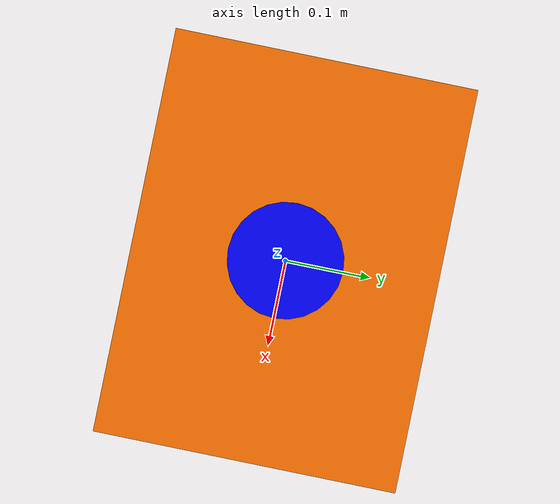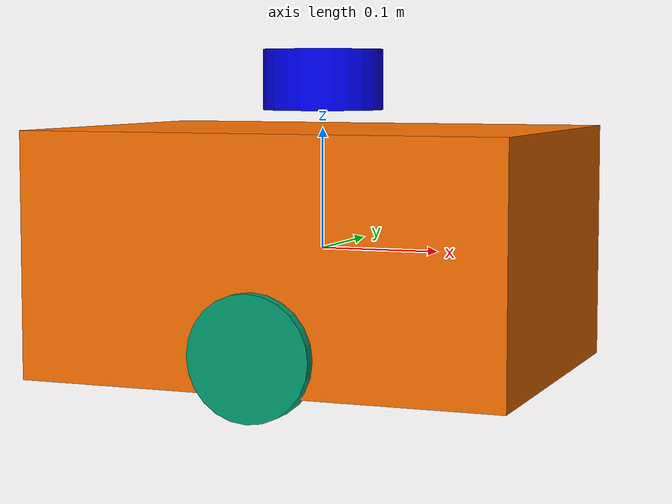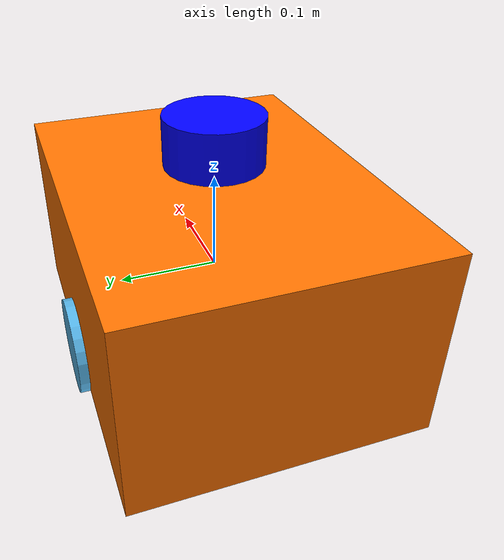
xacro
<?xml version="1.0"?>
<robot name="robot2025" xmlns:xacro="http://ros.org/wiki/xacro">

    <!-- Materials -->
    <material name="orange">
        <color rgba="1.0 0.45 0.0 1" />
    </material>
    <material name="blue">
        <color rgba="0.0 0.0 1.0 1" />
    </material>

    <!-- Base link -->
    <link name="base_link">
        <visual>
            <geometry>
                <box size="0.4 0.3 0.2" />
            </geometry>
            <material name="orange" />
        </visual>
        <collision>
            <geometry>
                <box size="0.4 0.3 0.2" />
            </geometry>
        </collision>
        <inertial>
            <mass value="5.0" />
            <inertia ixx="0.1" ixy="0.0" ixz="0.0" iyy="0.1" iyz="0.0" izz="0.1" />
        </inertial>
    </link>

    <!-- Left wheel -->
    <link name="left_wheel">
        <visual>
            <geometry>
                <cylinder radius="0.05" length="0.02" />
            </geometry>
            <origin xyz="0 0 0" rpy="1.5708 0 0" />
        </visual>
        <collision>
            <geometry>
                <cylinder radius="0.05" length="0.02" />
            </geometry>
            <origin xyz="0 0 0" rpy="1.5708 0 0" />
        </collision>
        <inertial>
            <mass value="0.2" />
            <inertia ixx="0.001" ixy="0" ixz="0" iyy="0.001" iyz="0" izz="0.001" />
        </inertial>
    </link>

    <joint name="left_wheel_joint" type="continuous">
        <parent link="base_link" />
        <child link="left_wheel" />
        <origin xyz="0 0.15 -0.07" rpy="0 0 0" />
        <axis xyz="0 1 0" />
    </joint>

    <transmission name="left_wheel_trans">
        <type>transmission_interface/SimpleTransmission</type>
        <joint name="left_wheel_joint">
            <hardwareInterface>hardware_interface/VelocityJointInterface</hardwareInterface>
        </joint>
        <actuator name="left_wheel_motor">
            <mechanicalReduction>1</mechanicalReduction>
        </actuator>
    </transmission>

    <!-- Right wheel -->
    <link name="right_wheel">
        <visual>
            <geometry>
                <cylinder radius="0.05" length="0.02" />
            </geometry>
            <origin xyz="0 0 0" rpy="1.5708 0 0" />
        </visual>
        <collision>
            <geometry>
                <cylinder radius="0.05" length="0.02" />
            </geometry>
            <origin xyz="0 0 0" rpy="1.5708 0 0" />
        </collision>
        <inertial>
            <mass value="0.2" />
            <inertia ixx="0.001" ixy="0" ixz="0" iyy="0.001" iyz="0" izz="0.001" />
        </inertial>
    </link>

    <joint name="right_wheel_joint" type="continuous">
        <parent link="base_link" />
        <child link="right_wheel" />
        <origin xyz="0 -0.15 -0.07" rpy="0 0 0" />
        <axis xyz="0 1 0" />
    </joint>

    <transmission name="right_wheel_trans">
        <type>transmission_interface/SimpleTransmission</type>
        <joint name="right_wheel_joint">
            <hardwareInterface>hardware_interface/VelocityJointInterface</hardwareInterface>
        </joint>
        <actuator name="right_wheel_motor">
            <mechanicalReduction>1</mechanicalReduction>
        </actuator>
    </transmission>

    <!-- Lidar -->
    <link name="lidar_link">
        <visual>
            <geometry>
                <cylinder radius="0.05" length="0.05" />
            </geometry>
            <origin xyz="0 0 0" rpy="0 0 0" />
            <material name="blue" />
        </visual>
    </link>

    <joint name="lidar_joint" type="fixed">
        <parent link="base_link" />
        <child link="lidar_link" />
        <origin xyz="0 0 0.14" rpy="0 0 0" />
    </joint>

    <!-- IMU -->
    <link name="imu_link" />
    <joint name="imu_joint" type="fixed">
        <parent link="base_link" />
        <child link="imu_link" />
        <origin xyz="0 0 0.1" rpy="0 0 0" />
    </joint>

    <!-- ros2_control config for wheels -->
    <ros2_control name="diff_drive_base" type="system">
        <hardware>
            <plugin>gz_ros2_control/GazeboSystem</plugin>
        </hardware>
        <joint name="left_wheel_joint">
            <command_interface name="velocity" />
            <state_interface name="velocity" />
            <state_interface name="position" />
        </joint>
        <joint name="right_wheel_joint">
            <command_interface name="velocity" />
            <state_interface name="velocity" />
            <state_interface name="position" />
        </joint>
    </ros2_control>

    <!-- Ignition Gazebo diff drive plugin -->
    <gazebo>
        <plugin
            filename="libignition-gazebo-diff-drive-system.so"
            name="ignition::gazebo::systems::DiffDrive">
            <left_joint>left_wheel_joint</left_joint>
            <right_joint>right_wheel_joint</right_joint>
            <wheel_separation>0.3</wheel_separation>
            <wheel_radius>0.05</wheel_radius>
            <odom_publish_frequency>30</odom_publish_frequency>
            <max_linear_acceleration>1</max_linear_acceleration>
            <min_linear_acceleration>-1</min_linear_acceleration>
            <max_angular_acceleration>2</max_angular_acceleration>
            <min_angular_acceleration>-2</min_angular_acceleration>
            <max_linear_velocity>0.5</max_linear_velocity>
            <min_linear_velocity>-0.5</min_linear_velocity>
            <max_angular_velocity>1</max_angular_velocity>
            <min_angular_velocity>-1</min_angular_velocity>
            <topic>diff_drive_base/cmd_vel_unstamped</topic>
            <odom_topic>odom</odom_topic>
            <frame_id>odom</frame_id>
            <child_frame_id>base_link</child_frame_id>
        </plugin>
    </gazebo>

    <ros2_control name="GazeboSystem" type="system">
        <hardware>
          <plugin>gz_ros2_control/GazeboSimSystem</plugin>
        </hardware>

        <joint name="left_wheel_joint">
          <command_interface name="velocity"/>
          <state_interface name="velocity"/>
          <state_interface name="position"/>
        </joint>

        <joint name="right_wheel_joint">
          <command_interface name="velocity"/>
          <state_interface name="velocity"/>
          <state_interface name="position"/>
        </joint>
      </ros2_control>

    <!-- Gazebo sensor definitions -->
    <gazebo reference="lidar_link">
        <sensor name="lidar" type="gpu_lidar">
            <always_on>true</always_on>
            <update_rate>10</update_rate>
            <ray>
                <scan>
                    <horizontal>
                        <samples>360</samples>
                        <resolution>1</resolution>
                        <min_angle>-3.1415</min_angle>
                        <max_angle>3.1415</max_angle>
                    </horizontal>
                </scan>
                <range>
                    <min>0.12</min>
                    <max>10.0</max>
                    <resolution>0.01</resolution>
                </range>
            </ray>
        </sensor>
    </gazebo>

    <gazebo reference="imu_link">
        <sensor name="imu" type="imu">
            <always_on>true</always_on>
            <update_rate>50</update_rate>
        </sensor>
    </gazebo>

</robot>
